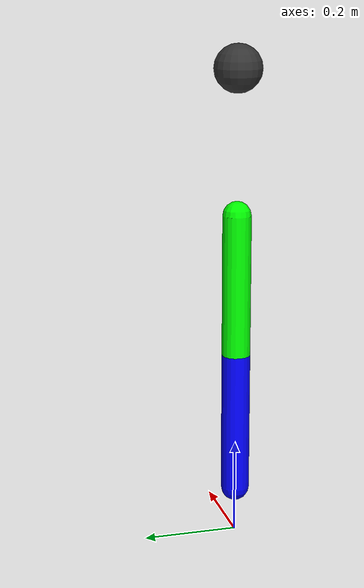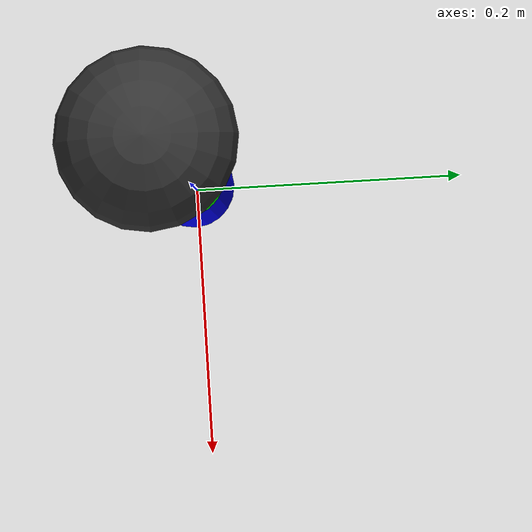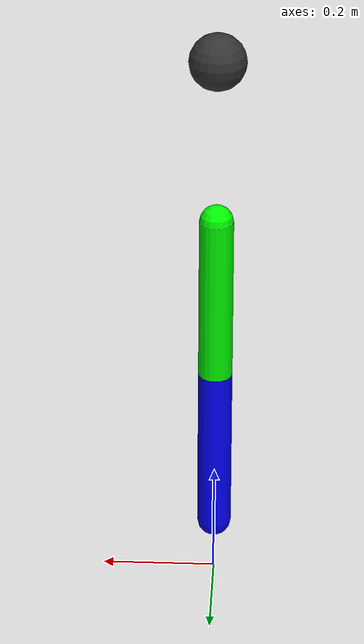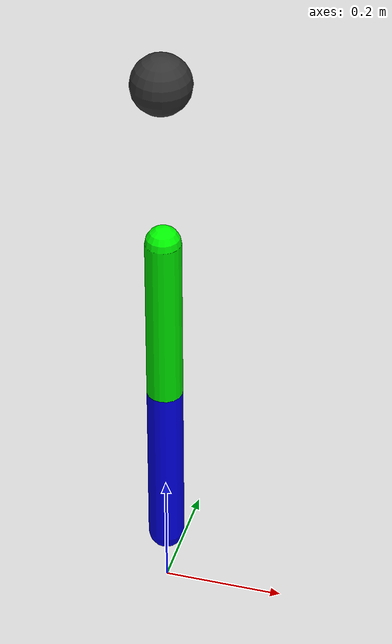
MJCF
<mujoco model="double_pendulum">
    option timestep="0.001 gravity="0 0 -9.81"  <!-- Normal gravity -->

    <worldbody>
        <!-- 🔹 Fixed Pivot (Anchor Point) -->
        <body name="pivot" pos="0 0 1">
            <geom type="sphere" size="0.05" rgba="0.2 0.2 0.2 1"/>  <!-- Small pivot sphere -->

            <!-- 🔹 First Arm (Connected to Pivot) -->
            <body name="pendulum1" pos="0 0 -0.3">
                <joint name="joint1" type="hinge" axis="0 1 0" range="-180 180" damping="0.01"/>
                <geom type="capsule" fromto="0 0 0 0 0 -0.3" size="0.03" rgba="0 1 0 1" mass="1"/>

                <!-- 🔹 Second Arm (Connected to First Arm) -->
                <body name="pendulum2" pos="0 0 -0.3">
                    <joint name="joint2" type="hinge" axis="0 1 0" range="-180 180" damping="0.01"/>
                    <geom type="capsule" fromto="0 0 0 0 0 -0.3" size="0.03" rgba="0 0 1 1" mass="1"/>
                </body>
            </body>
        </body>
    </worldbody>
</mujoco>
